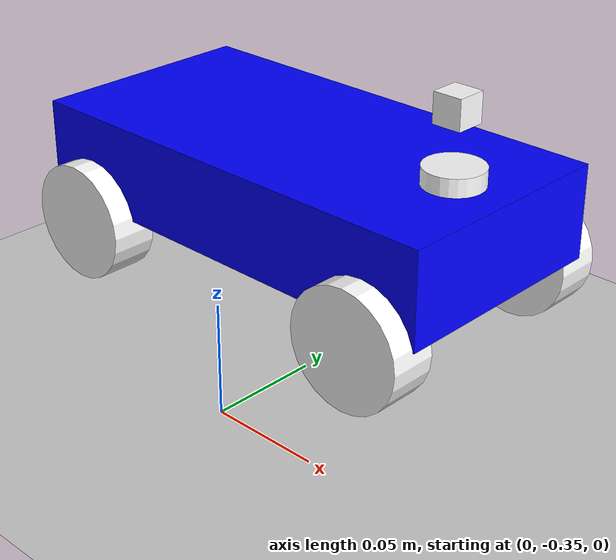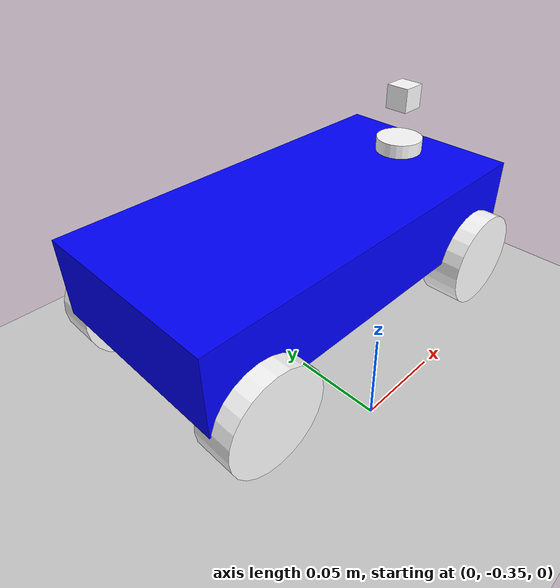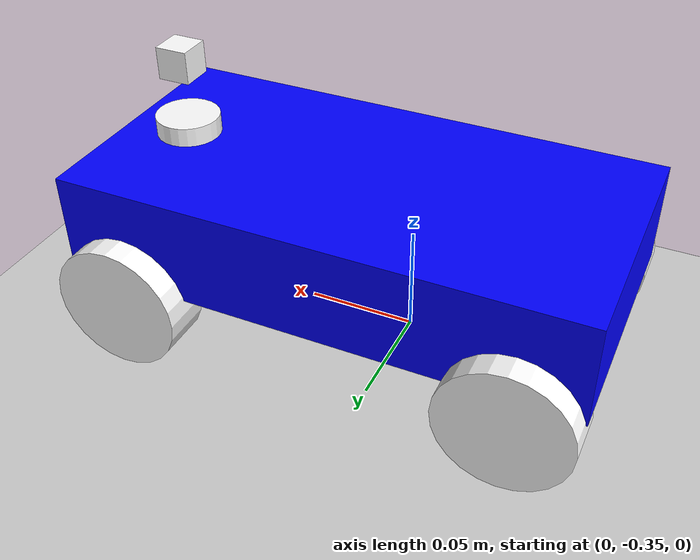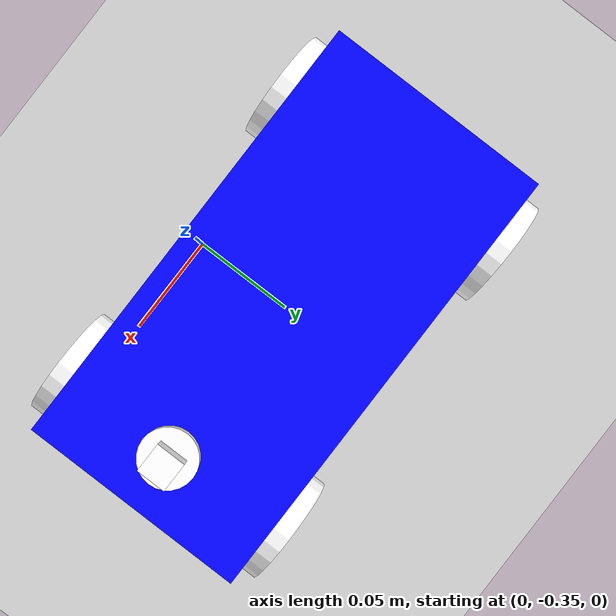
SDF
<sdf version="1.8">
 <world name="default">
  <physics type="ode">
   <max_step_size>0.004</max_step_size>
   <real_time_factor>1.0</real_time_factor>
   <real_time_update_rate>250</real_time_update_rate>
  </physics>
  <plugin name="gz::sim::systems::Physics" filename="gz-sim-physics-system"/>
  <plugin name="gz::sim::systems::UserCommands" filename="gz-sim-user-commands-system"/>
  <plugin name="gz::sim::systems::SceneBroadcaster" filename="gz-sim-scene-broadcaster-system"/>
  <plugin name="gz::sim::systems::Contact" filename="gz-sim-contact-system"/>
  <plugin name="gz::sim::systems::Imu" filename="gz-sim-imu-system"/>
  <plugin name="gz::sim::systems::AirPressure" filename="gz-sim-air-pressure-system"/>
  <plugin name="gz::sim::systems::Sensors" filename="gz-sim-sensors-system">
   <render_engine>ogre2</render_engine>
  </plugin>
  <gravity>0 0 -9.8</gravity>
  <magnetic_field>6e-06 2.3e-05 -4.2e-05</magnetic_field>
  <atmosphere type="adiabatic"/>
  <scene>
   <grid>false</grid>
   <ambient>0.4 0.4 0.4 1</ambient>
   <background>0.7 0.7 0.7 1</background>
   <shadows>true</shadows>
  </scene>
  <model name="ground_plane">
   <static>true</static>
   <link name="link">
    <collision name="collision">
     <geometry><plane><normal>0 0 1</normal><size>1 1</size></plane></geometry>
    </collision>
    <visual name="visual">
     <geometry><plane><normal>0 0 1</normal><size>100 100</size></plane></geometry>
     <material>
      <ambient>0.8 0.8 0.8 1</ambient>
      <diffuse>0.8 0.8 0.8 1</diffuse>
      <specular>0.8 0.8 0.8 1</specular>
     </material>
    </visual>
    <inertial>
     <mass>1</mass>
     <inertia><ixx>1</ixx><ixy>0</ixy><ixz>0</ixz><iyy>1</iyy><iyz>0</iyz><izz>1</izz></inertia>
    </inertial>
   </link>
  </model>
  <light name="sunUTC" type="directional">
   <pose>0 0 500 0 -0 0</pose>
   <intensity>1</intensity>
   <direction>0.001 0.625 -0.78</direction>
   <diffuse>0.904 0.904 0.904 1</diffuse>
   <specular>0.271 0.271 0.271 1</specular>
   <attenuation><range>2000</range><linear>0</linear><constant>1</constant><quadratic>0</quadratic></attenuation>
   <spot><inner_angle>0</inner_angle><outer_angle>0</outer_angle><falloff>0</falloff></spot>
  </light>
  <include>
   <pose>0 -0.3 0.04 0 0 0</pose>
   <uri>/home/nomeer/NoMeEr/Robotics-Software/ros2/nomeer_robot/src/robot_description/models/nomeer_robot/robot_2.sdf</uri>
  </include>
 </world>
</sdf>

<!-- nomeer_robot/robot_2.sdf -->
<sdf version="1.9">

    <!-- nomeer_robot model -->
    <model name='nomeer_robot' canonical_link='base_link'>

        <static>false</static>
        <self_collide>false</self_collide>

        <!-- links-->
        <!-- base_footprint link -->
        <!--link
        name="base_footprint" /-->

        <!-- base_link -->
        <link name="base_link">0.0 <pose relative_to='__model__'>0 0 0.05 0 0 0</pose>

            <inertial>
                <mass>3.0</mass>
                <inertia>
                    <ixx>0.0054</ixx>
                    <ixy>0</ixy>
                    <ixz>0</ixz>
                    <iyy>0.0252</iyy>
                    <iyz>0</iyz>
                    <izz>0.0252</izz>
                </inertia>
            </inertial>

            <visual
                name='visual'>
                <geometry>
                    <box>
                        <size>0.2 0.1 0.04</size>
                    </box>
                </geometry>
                <material> <!-- blue color -->
                    <ambient>0.0 0.0 1.0 1</ambient>
                    <diffuse>0.0 0.0 1.0 1</diffuse>
                    <specular>0.0 0.0 1.0 1</specular>
                </material>
            </visual>

            <collision
                name='collision'>
                <geometry>
                    <box>
                        <size>0.2 0.1 0.04</size>
                    </box>
                </geometry>
            </collision>

        </link>

        <!-- front_right_wheel_link-->
        <link name="front_right_wheel_link">

            <pose relative_to="base_link">0.075 -0.05 -0.025 1.5707 0 0</pose>

            <inertial>
                <mass>0.05</mass>
                <inertia>
                    <ixx>0.00003331</ixx>
                    <ixy>0</ixy>
                    <ixz>0</ixz>
                    <iyy>0.0000204</iyy>
                    <iyz>0</iyz>
                    <izz>0.0000204</izz>
                </inertia>
            </inertial>

            <visual name='visual'>
                <geometry>
                    <cylinder>
                        <radius>0.025</radius>
                        <length>0.02</length>
                    </cylinder>
                </geometry>
                <material> <!-- white color -->
                    <ambient>1.0 1.0 1.0 1.0</ambient>
                    <diffuse>1.0 1.0 1.0 1.0</diffuse>
                    <specular>1.0 1.0 1.0 1.0</specular>
                </material>
            </visual>

            <collision name='collision'>
                <geometry>
                    <cylinder>
                        <radius>0.025</radius>
                        <length>0.02</length>
                    </cylinder>
                </geometry>
            </collision>

        </link>

        <!-- front_left_wheel_link-->
        <link name="front_left_wheel_link">

            <pose relative_to="base_link">0.075 0.05 -0.025 1.5707 0 0</pose>

            <inertial>
                <mass>0.05</mass>
                <inertia>
                    <ixx>0.00003331</ixx>
                    <ixy>0</ixy>
                    <ixz>0</ixz>
                    <iyy>0.0000204</iyy>
                    <iyz>0</iyz>
                    <izz>0.0000204</izz>
                </inertia>
            </inertial>

            <visual name='visual'>
                <geometry>
                    <cylinder>
                        <radius>0.025</radius>
                        <length>0.02</length>
                    </cylinder>
                </geometry>
                <material> <!-- white color -->
                    <ambient>1.0 1.0 1.0 1.0</ambient>
                    <diffuse>1.0 1.0 1.0 1.0</diffuse>
                    <specular>1.0 1.0 1.0 1.0</specular>
                </material>
            </visual>

            <collision name='collision'>
                <geometry>
                    <cylinder>
                        <radius>0.025</radius>
                        <length>0.01</length>
                    </cylinder>
                </geometry>
            </collision>

        </link>

        <!-- steering_front_right_link -->
        <link name="steering_front_right_link">

            <pose relative_to="base_link">0.075 -0.05 -0.025 1.5707 0 0</pose>

            <inertial>
                <mass>0.005</mass>
                <inertia>
                    <ixx>0.0000018</ixx>
                    <iyy>0.0000018</iyy>
                    <izz>0.0000018</izz>
                </inertia>
            </inertial>

        </link>

        <!-- steering_front_left_link -->
        <link name="steering_front_left_link">

            <pose relative_to="base_link">0.075 0.05 -0.025 1.5707 0 0</pose>

            <inertial>
                <mass>0.005</mass>
                <inertia>
                    <ixx>0.0000018</ixx>
                    <iyy>0.0000018</iyy>
                    <izz>0.0000018</izz>
                </inertia>
            </inertial>

        </link>

        <!-- rear_right_wheel_link-->
        <link name="rear_right_wheel_link">

            <pose relative_to="base_link">-0.075 0.05 -0.025 1.5707 0 0</pose>

            <inertial>
                <mass>0.05</mass>
                <inertia>
                    <ixx>0.00003331</ixx>
                    <ixy>0</ixy>
                    <ixz>0</ixz>
                    <iyy>0.0000204</iyy>
                    <iyz>0</iyz>
                    <izz>0.0000204</izz>
                </inertia>
            </inertial>

            <visual name='visual'>
                <geometry>
                    <cylinder>
                        <radius>0.025</radius>
                        <length>0.02</length>
                    </cylinder>
                </geometry>
                <material> <!-- white color -->
                    <ambient>1.0 1.0 1.0 1.0</ambient>
                    <diffuse>1.0 1.0 1.0 1.0</diffuse>
                    <specular>1.0 1.0 1.0 1.0</specular>
                </material>
            </visual>

            <collision name='collision'>
                <geometry>
                    <cylinder>
                        <radius>0.025</radius>
                        <length>0.02</length>
                    </cylinder>
                </geometry>
            </collision>

        </link>

        <!-- rear_left_wheel_link-->
        <link name="rear_left_wheel_link">

            <pose relative_to="base_link">-0.075 -0.05 -0.025 1.5707 0 0</pose>

            <inertial>
                <mass>0.05</mass>
                <inertia>
                    <ixx>0.00003331</ixx>
                    <ixy>0</ixy>
                    <ixz>0</ixz>
                    <iyy>0.0000204</iyy>
                    <iyz>0</iyz>
                    <izz>0.0000204</izz>
                </inertia>
            </inertial>

            <visual name='visual'>
                <geometry>
                    <cylinder>
                        <radius>0.025</radius>
                        <length>0.02</length>
                    </cylinder>
                </geometry>
                <material> <!-- white color -->
                    <ambient>1.0 1.0 1.0 1.0</ambient>
                    <diffuse>1.0 1.0 1.0 1.0</diffuse>
                    <specular>1.0 1.0 1.0 1.0</specular>
                </material>
            </visual>

            <collision name='collision'>
                <geometry>
                    <cylinder>
                        <radius>0.025</radius>
                        <length>0.02</length>
                    </cylinder>
                </geometry>
            </collision>

        </link>

        <!-- camera_link-->
        <link name="camera_link">

            <pose relative_to="base_link">0.075 0 0.05 0 0 0</pose>

            <visual name='visual'>
                <geometry>
                    <box>
                        <size>0.0125 0.0125 0.0125</size>
                    </box>
                </geometry>
                <material> <!-- white color -->
                    <ambient>1.0 1.0 1.0 1.0</ambient>
                    <diffuse>1.0 1.0 1.0 1.0</diffuse>
                    <specular>1.0 1.0 1.0 1.0</specular>
                </material>
            </visual>

            <collision name='collision'>
                <geometry>
                    <box>
                        <size>0.0125 0.0125 0.0125</size>
                    </box>
                </geometry>
            </collision>

            <sensor name="camera" type="camera">
                <pose relative_to='camera_link'>0 0 0 0 0 0</pose>
                <camera>
                    <horizontal_fov>1.047</horizontal_fov>
                    <image>
                        <width>320</width>
                        <height>240</height>
                    </image>
                    <clip>
                        <near>0.1</near>
                        <far>100</far>
                    </clip>
                </camera>
                <always_on>1</always_on>
                <update_rate>10</update_rate>
                <visualize>true</visualize>
            </sensor>

        </link>

        <!-- lidar_link-->
        <link name="lidar_link">

            <pose relative_to="base_link">0.075 0 0.02125 0 0 0</pose>

            <visual name='visual'>
                <geometry>
                    <cylinder>
                        <radius>0.0125</radius>
                        <length>0.0125</length>
                    </cylinder>
                </geometry>
                <material> <!-- white color -->
                    <ambient>1.0 1.0 1.0 1.0</ambient>
                    <diffuse>1.0 1.0 1.0 1.0</diffuse>
                    <specular>1.0 1.0 1.0 1.0</specular>
                </material>
            </visual>

            <collision name='collision'>
                <geometry>
                    <cylinder>
                        <radius>0.0125</radius>
                        <length>0.0125</length>
                    </cylinder>
                </geometry>
            </collision>

            <sensor name="lidar" type="gpu_lidar">
                <lidar>
                    <scan>
                        <horizontal>
                            <samples>400</samples>
                            <resolution>1</resolution>
                            <min_angle>-1.5707</min_angle>
                            <max_angle>1.5707</max_angle>
                        </horizontal>
                    </scan>
                    <range>
                        <min>0.15</min>
                        <max>25</max>
                        <resolution>0.01</resolution>
                    </range>
                </lidar>
                <gz_frame_id>lidar_link</gz_frame_id>
                <alwaysOn>1</alwaysOn>
                <visualize>true</visualize>
                <update_rate>10</update_rate>
            </sensor>

        </link>

        <!-- joins -->
        <!-- front_right_wheel_joint -->
        <joint name='front_right_wheel_joint' type='revolute'>
            <pose relative_to='front_right_wheel_link' />
            <parent>base_link</parent>
            <child>front_right_wheel_link</child>
            <axis>
                <xyz>0 1 0</xyz>
                <limit>
                    <lower>-inf</lower>
                    <upper>inf</upper>
                </limit>
                <dynamics>
                    <spring_reference>0</spring_reference>
                    <spring_stiffness>0</spring_stiffness>
                </dynamics>
            </axis>
        </joint>

        <!-- front_left_wheel_joint -->
        <joint name='front_left_wheel_joint' type='revolute'>
            <pose relative_to='front_left_wheel_link' />
            <parent>base_link</parent>
            <child>front_left_wheel_link</child>
            <axis>
                <xyz>0 1 0</xyz>
                <limit>
                    <lower>-inf</lower>
                    <upper>inf</upper>
                </limit>
                <dynamics>
                    <spring_reference>0</spring_reference>
                    <spring_stiffness>0</spring_stiffness>
                </dynamics>
            </axis>
        </joint>

        <!-- steering_front_right_joint -->
        <joint name="steering_front_right_joint" type="revolute">
            <pose relative_to="steering_front_right_link" />
            <parent>base_link</parent>
            <child>steering_front_right_link</child>
            <axis>
                <xyz>0 0 1</xyz>
                <limit>
                    <lower>-0.6</lower>
                    <upper>0.6</upper>
                    <velocity>1.0</velocity>
                    <effort>25</effort>
                </limit>
                <dynamics>
                    <spring_reference>0</spring_reference>
                    <spring_stiffness>0</spring_stiffness>
                </dynamics>
            </axis>
        </joint>

        <!-- steering_front_left_joint -->
        <joint name="steering_front_left_joint" type="revolute">
            <pose relative_to="steering_front_left_link" />
            <parent>base_link</parent>
            <child>steering_front_left_link</child>
            <axis>
                <xyz>0 0 1</xyz>
                <limit>
                    <lower>-0.6</lower>
                    <upper>0.6</upper>
                    <velocity>1.0</velocity>
                    <effort>25</effort>
                </limit>
                <dynamics>
                    <spring_reference>0</spring_reference>
                    <spring_stiffness>0</spring_stiffness>
                </dynamics>
            </axis>
        </joint>

        <!-- rear_right_wheel_joint -->
        <joint name='rear_right_wheel_joint' type='revolute'>
            <pose relative_to='rear_right_wheel_link' />
            <parent>base_link</parent>
            <child>rear_right_wheel_link</child>
            <axis>
                <xyz>0 1 0</xyz>
                <limit>
                    <lower>-inf</lower>
                    <upper>inf</upper>
                </limit>
                <dynamics>
                    <spring_reference>0</spring_reference>
                    <spring_stiffness>0</spring_stiffness>
                </dynamics>
            </axis>
        </joint>

        <!-- rear_left_wheel_joint -->
        <joint name='rear_left_wheel_joint' type='revolute'>
            <pose relative_to='rear_left_wheel_link' />
            <parent>base_link</parent>
            <child>rear_left_wheel_link</child>
            <axis>
                <xyz>0 1 0</xyz>
                <limit>
                    <lower>-inf</lower>
                    <upper>inf</upper>
                </limit>
                <dynamics>
                    <spring_reference>0</spring_reference>
                    <spring_stiffness>0</spring_stiffness>
                </dynamics>
            </axis>
        </joint>

        <!-- camera_joint -->
        <joint name="camera_joint" type="fixed">
            <pose relative_to='camera_link' />
            <parent>base_link</parent>
            <child>camera_link</child>
        </joint>

        <!-- lidar_joint -->
        <joint name="lidar_joint" type="fixed">
            <pose relative_to='lidar_link' />
            <parent>base_link</parent>
            <child>lidar_link</child>
        </joint>

        <!-- plugins -->
        <!-- joint_controller plugin-->

        <!-- ackermann plugin -->
        <plugin
            filename="gz-sim-ackermann-steering-system"
            name="gz::sim::systems::AckermannSteering">
            <left_joint>rear_left_wheel_joint</left_joint>
            <left_joint>front_left_wheel_joint</left_joint>
            <right_joint>rear_right_wheel_joint</right_joint>
            <right_joint>front_right_wheel_joint</right_joint>
            <left_steering_joint>steering_front_left_joint</left_steering_joint>
            <right_steering_joint>steering_front_right_joint</right_steering_joint>
            <kingpin_width>0.13</kingpin_width>
            <steering_limit>0.4</steering_limit>
            <wheel_base>0.23521</wheel_base>
            <wheel_separation>0.164</wheel_separation>
            <wheel_radius>0.0345</wheel_radius>
            <min_velocity>-10.0</min_velocity>
            <max_velocity>10.0</max_velocity>
            <min_acceleration>-10</min_acceleration>
            <max_acceleration>10</max_acceleration>
            <topic>/cmd_vel</topic>
        </plugin>

        <!-- joint_state_publisher plugin -->
        <plugin
            filename="gz-sim-joint-state-publisher-system"
            name="gz::sim::systems::JointStatePublisher">
            <joint_name>front_left_wheel_joint</joint_name>
            <joint_name>rear_left_wheel_joint</joint_name>
            <joint_name>rear_right_wheel_joint</joint_name>
            <joint_name>front_right_wheel_joint</joint_name>
            <joint_name>steering_front_left_joint</joint_name>
            <joint_name>steering_front_right_joint</joint_name>
        </plugin>

    </model>

</sdf>
